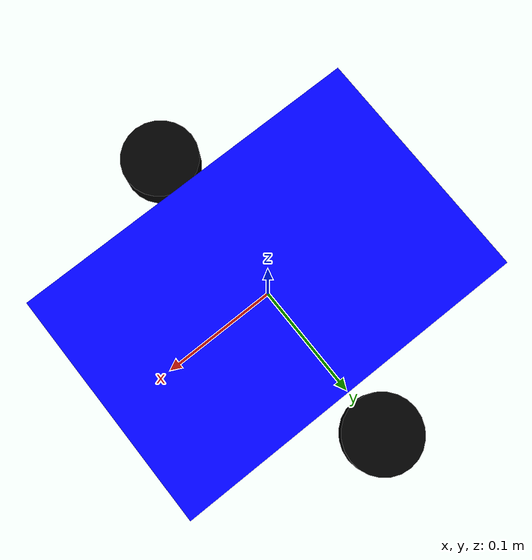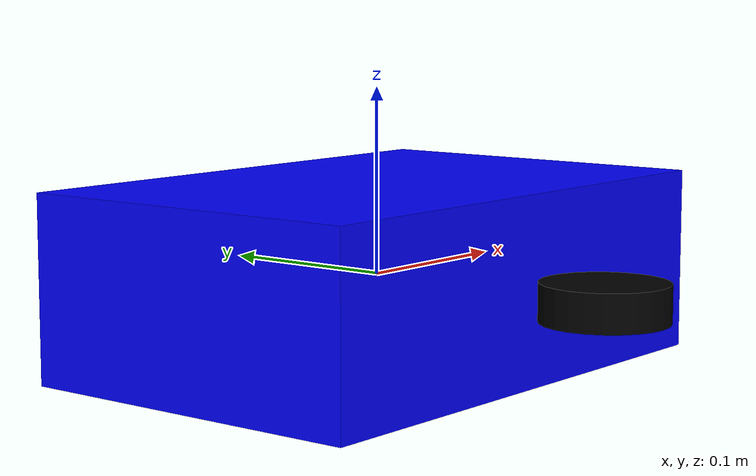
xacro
<?xml version="1.0"?>
<robot xmlns:xacro="http://www.ros.org/wiki/xacro" name="bumperbot">

  <!-- PARAMÈTRES PHYSIQUES À MESURER SUR VOTRE ROBOT RÉEL -->
  <xacro:property name="wheel_radius" value="0.033"/>
  <xacro:property name="wheel_separation" value="0.287"/>
  <xacro:property name="wheel_width" value="0.02"/>

  <!-- ROS2 CONTROL CONFIGURATION -->
  <ros2_control name="BumperbotControlSystem" type="system">
    <hardware>
      <plugin>bumperbot_firmware/BumperbotInterface</plugin>
      <param name="port">/dev/ttyUSB0</param>
    </hardware>

    <joint name="left_wheel_joint">
      <command_interface name="velocity">
        <param name="min">-2.0</param>
        <param name="max">2.0</param>
      </command_interface>
      <state_interface name="position"/>
      <state_interface name="velocity"/>
    </joint>

    <joint name="right_wheel_joint">
      <command_interface name="velocity">
        <param name="min">-2.0</param>
        <param name="max">2.0</param>
      </command_interface>
      <state_interface name="position"/>
      <state_interface name="velocity"/>
    </joint>
  </ros2_control>

  <!-- LINKS -->
  <link name="base_link">
    <inertial>
      <mass value="0.5"/>
      <inertia ixx="0.01" ixy="0" ixz="0" iyy="0.01" iyz="0" izz="0.01"/>
    </inertial>
    <visual>
      <geometry>
        <box size="0.3 0.2 0.1"/>
      </geometry>
      <material name="blue"/>
    </visual>
  </link>

  <link name="left_wheel">
    <inertial>
      <mass value="0.1"/>
      <inertia ixx="0.0001" ixy="0" ixz="0" iyy="0.0001" iyz="0" izz="0.0001"/>
    </inertial>
    <visual>
      <geometry>
        <cylinder radius="${wheel_radius}" length="${wheel_width}"/>
      </geometry>
      <material name="black"/>
    </visual>
  </link>

  <link name="right_wheel">
    <inertial>
      <mass value="0.1"/>
      <inertia ixx="0.0001" ixy="0" ixz="0" iyy="0.0001" iyz="0" izz="0.0001"/>
    </inertial>
    <visual>
      <geometry>
        <cylinder radius="${wheel_radius}" length="${wheel_width}"/>
      </geometry>
      <material name="black"/>
    </visual>
  </link>

  <!-- JOINTS -->
  <joint name="left_wheel_joint" type="continuous">
    <parent link="base_link"/>
    <child link="left_wheel"/>
    <origin xyz="0.0 ${wheel_separation/2} 0.0" rpy="0 0 0"/>
    <axis xyz="0 1 0"/>
  </joint>

  <joint name="right_wheel_joint" type="continuous">
    <parent link="base_link"/>
    <child link="right_wheel"/>
    <origin xyz="0.0 -${wheel_separation/2} 0.0" rpy="0 0 0"/>
    <axis xyz="0 1 0"/>
  </joint>

  <!-- MATERIALS -->
  <material name="blue">
    <color rgba="0 0 1 1"/>
  </material>
  <material name="black">
    <color rgba="0 0 0 1"/>
  </material>

</robot>
